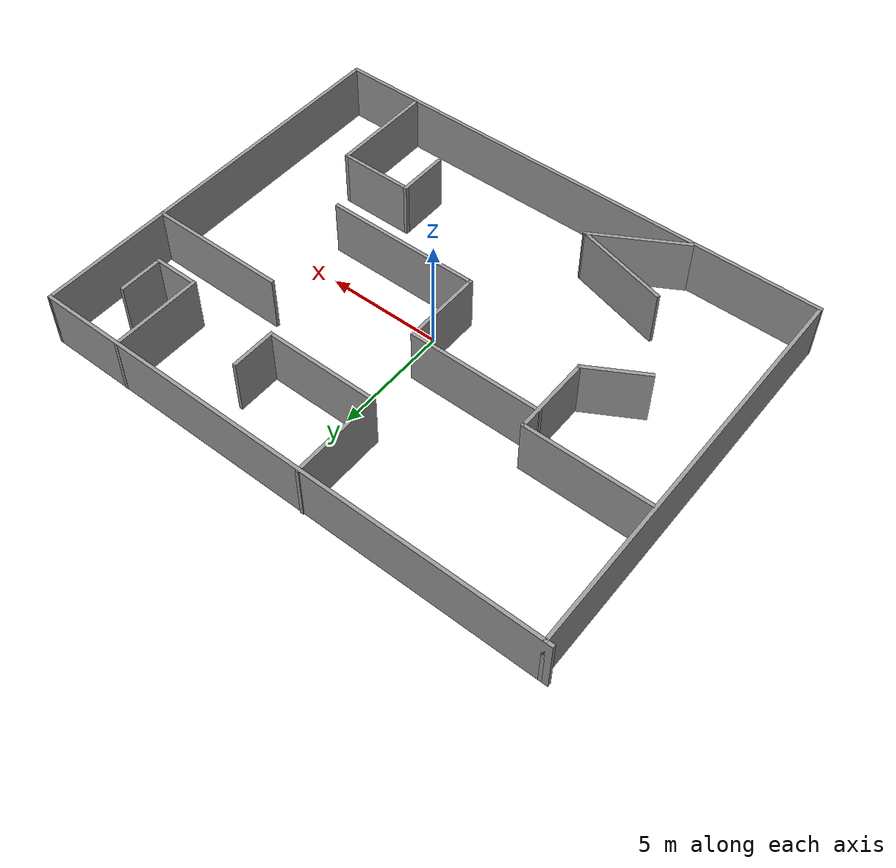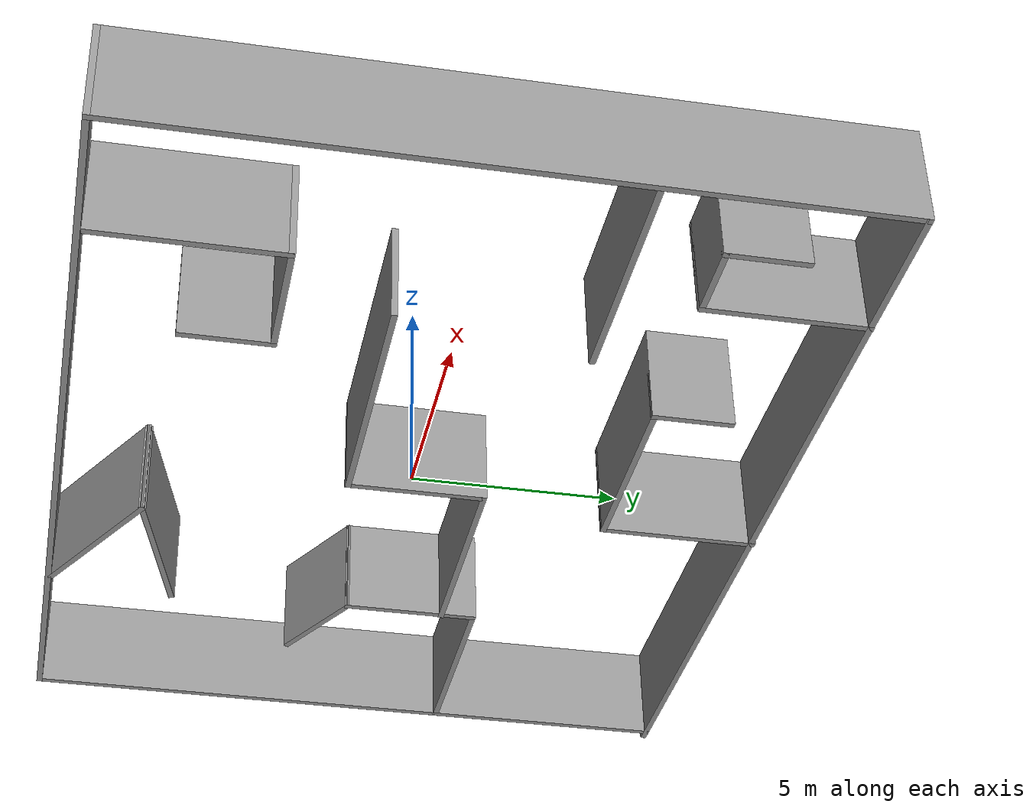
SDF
<?xml version='1.0'?>
<sdf version='1.7'>
  <model name='playground'>
    <pose>-0.331229 0.25121 0 0 -0 0</pose>
    <link name='Wall_10'>
      <collision name='Wall_10_Collision'>
        <geometry>
          <box>
            <size>23 0.15 2.5</size>
          </box>
        </geometry>
        <pose>0 0 1.25 0 -0 0</pose>
      </collision>
      <visual name='Wall_10_Visual'>
        <pose>0 0 1.25 0 -0 0</pose>
        <geometry>
          <box>
            <size>23 0.15 2.5</size>
          </box>
        </geometry>
        <material>
          <script>
            <uri>file://media/materials/scripts/gazebo.material</uri>
            <name>Gazebo/Grey</name>
          </script>
          <ambient>1 1 1 1</ambient>
        </material>
        <meta>
          <layer>0</layer>
        </meta>
      </visual>
      <pose>-1e-06 8.65231 0 0 -0 0</pose>
    </link>
    <link name='Wall_11'>
      <collision name='Wall_11_Collision'>
        <geometry>
          <box>
            <size>17.5 0.15 2.5</size>
          </box>
        </geometry>
        <pose>0 0 1.25 0 -0 0</pose>
      </collision>
      <visual name='Wall_11_Visual'>
        <pose>0 0 1.25 0 -0 0</pose>
        <geometry>
          <box>
            <size>17.5 0.15 2.5</size>
          </box>
        </geometry>
        <material>
          <script>
            <uri>file://media/materials/scripts/gazebo.material</uri>
            <name>Gazebo/Grey</name>
          </script>
          <ambient>1 1 1 1</ambient>
        </material>
        <meta>
          <layer>0</layer>
        </meta>
      </visual>
      <pose>11.425 -0.022689 0 0 -0 -1.5708</pose>
    </link>
    <link name='Wall_12'>
      <collision name='Wall_12_Collision'>
        <geometry>
          <box>
            <size>22.75 0.15 2.5</size>
          </box>
        </geometry>
        <pose>0 0 1.25 0 -0 0</pose>
      </collision>
      <visual name='Wall_12_Visual'>
        <pose>0 0 1.25 0 -0 0</pose>
        <geometry>
          <box>
            <size>22.75 0.15 2.5</size>
          </box>
        </geometry>
        <material>
          <script>
            <uri>file://media/materials/scripts/gazebo.material</uri>
            <name>Gazebo/Grey</name>
          </script>
          <ambient>1 1 1 1</ambient>
        </material>
        <meta>
          <layer>0</layer>
        </meta>
      </visual>
      <pose>0.124999 -8.69769 0 0 -0 3.14159</pose>
    </link>
    <link name='Wall_13'>
      <collision name='Wall_13_Collision'>
        <geometry>
          <box>
            <size>17.5 0.15 2.5</size>
          </box>
        </geometry>
        <pose>0 0 1.25 0 -0 0</pose>
      </collision>
      <visual name='Wall_13_Visual'>
        <pose>0 0 1.25 0 -0 0</pose>
        <geometry>
          <box>
            <size>17.5 0.15 2.5</size>
          </box>
        </geometry>
        <material>
          <script>
            <uri>file://media/materials/scripts/gazebo.material</uri>
            <name>Gazebo/Grey</name>
          </script>
          <ambient>1 1 1 1</ambient>
        </material>
        <meta>
          <layer>0</layer>
        </meta>
      </visual>
      <pose>-11.175 -0.022689 0 0 -0 1.5708</pose>
    </link>
    <link name='Wall_15'>
      <collision name='Wall_15_Collision'>
        <geometry>
          <box>
            <size>4 0.15 2.5</size>
          </box>
        </geometry>
        <pose>0 0 1.25 0 -0 0</pose>
      </collision>
      <visual name='Wall_15_Visual'>
        <pose>0 0 1.25 0 -0 0</pose>
        <geometry>
          <box>
            <size>4 0.15 2.5</size>
          </box>
        </geometry>
        <material>
          <script>
            <uri>file://media/materials/scripts/gazebo.material</uri>
            <name>Gazebo/Grey</name>
          </script>
          <ambient>1 1 1 1</ambient>
        </material>
        <meta>
          <layer>0</layer>
        </meta>
      </visual>
      <pose>7.79704 6.73751 0 0 -0 -1.5708</pose>
    </link>
    <link name='Wall_16'>
      <collision name='Wall_16_Collision'>
        <geometry>
          <box>
            <size>2 0.15 2.5</size>
          </box>
        </geometry>
        <pose>0 0 1.25 0 -0 0</pose>
      </collision>
      <visual name='Wall_16_Visual'>
        <pose>0 0 1.25 0 -0 0</pose>
        <geometry>
          <box>
            <size>2 0.15 2.5</size>
          </box>
        </geometry>
        <material>
          <script>
            <uri>file://media/materials/scripts/gazebo.material</uri>
            <name>Gazebo/Grey</name>
          </script>
          <ambient>1 1 1 1</ambient>
        </material>
        <meta>
          <layer>0</layer>
        </meta>
      </visual>
      <pose>8.72204 4.81251 0 0 -0 0</pose>
    </link>
    <link name='Wall_17'>
      <collision name='Wall_17_Collision'>
        <geometry>
          <box>
            <size>2 0.15 2.5</size>
          </box>
        </geometry>
        <pose>0 0 1.25 0 -0 0</pose>
      </collision>
      <visual name='Wall_17_Visual'>
        <pose>0 0 1.25 0 -0 0</pose>
        <geometry>
          <box>
            <size>2 0.15 2.5</size>
          </box>
        </geometry>
        <material>
          <script>
            <uri>file://media/materials/scripts/gazebo.material</uri>
            <name>Gazebo/Grey</name>
          </script>
          <ambient>1 1 1 1</ambient>
        </material>
        <meta>
          <layer>0</layer>
        </meta>
      </visual>
      <pose>9.64704 5.73751 0 0 -0 1.5708</pose>
    </link>
    <link name='Wall_19'>
      <collision name='Wall_19_Collision'>
        <geometry>
          <box>
            <size>6 0.15 2.5</size>
          </box>
        </geometry>
        <pose>0 0 1.25 0 -0 0</pose>
      </collision>
      <visual name='Wall_19_Visual'>
        <pose>0 0 1.25 0 -0 0</pose>
        <geometry>
          <box>
            <size>6 0.15 2.5</size>
          </box>
        </geometry>
        <material>
          <script>
            <uri>file://media/materials/scripts/gazebo.material</uri>
            <name>Gazebo/Grey</name>
          </script>
          <ambient>1 1 1 1</ambient>
        </material>
        <meta>
          <layer>0</layer>
        </meta>
      </visual>
      <pose>8.49545 2.92837 0 0 -0 3.14159</pose>
    </link>
    <link name='Wall_23'>
      <collision name='Wall_23_Collision'>
        <geometry>
          <box>
            <size>4.5 0.15 2.5</size>
          </box>
        </geometry>
        <pose>0 0 1.25 0 -0 0</pose>
      </collision>
      <visual name='Wall_23_Visual'>
        <pose>0 0 1.25 0 -0 0</pose>
        <geometry>
          <box>
            <size>4.5 0.15 2.5</size>
          </box>
        </geometry>
        <material>
          <script>
            <uri>file://media/materials/scripts/gazebo.material</uri>
            <name>Gazebo/Grey</name>
          </script>
          <ambient>1 1 1 1</ambient>
        </material>
        <meta>
          <layer>0</layer>
        </meta>
      </visual>
      <pose>8.00811 -6.3649 0 0 -0 1.5708</pose>
    </link>
    <link name='Wall_24'>
      <collision name='Wall_24_Collision'>
        <geometry>
          <box>
            <size>3.25 0.15 2.5</size>
          </box>
        </geometry>
        <pose>0 0 1.25 0 -0 0</pose>
      </collision>
      <visual name='Wall_24_Visual'>
        <pose>0 0 1.25 0 -0 0</pose>
        <geometry>
          <box>
            <size>3.25 0.15 2.5</size>
          </box>
        </geometry>
        <material>
          <script>
            <uri>file://media/materials/scripts/gazebo.material</uri>
            <name>Gazebo/Grey</name>
          </script>
          <ambient>1 1 1 1</ambient>
        </material>
        <meta>
          <layer>0</layer>
        </meta>
      </visual>
      <pose>6.45811 -4.18991 0 0 -0 3.14159</pose>
    </link>
    <link name='Wall_25'>
      <collision name='Wall_25_Collision'>
        <geometry>
          <box>
            <size>2.25 0.15 2.5</size>
          </box>
        </geometry>
        <pose>0 0 1.25 0 -0 0</pose>
      </collision>
      <visual name='Wall_25_Visual'>
        <pose>0 0 1.25 0 -0 0</pose>
        <geometry>
          <box>
            <size>2.25 0.15 2.5</size>
          </box>
        </geometry>
        <material>
          <script>
            <uri>file://media/materials/scripts/gazebo.material</uri>
            <name>Gazebo/Grey</name>
          </script>
          <ambient>1 1 1 1</ambient>
        </material>
        <meta>
          <layer>0</layer>
        </meta>
      </visual>
      <pose>4.90811 -5.2399 0 0 -0 -1.5708</pose>
    </link>
    <link name='Wall_27'>
      <collision name='Wall_27_Collision'>
        <geometry>
          <box>
            <size>4 0.15 2.5</size>
          </box>
        </geometry>
        <pose>0 0 1.25 0 -0 0</pose>
      </collision>
      <visual name='Wall_27_Visual'>
        <pose>0 0 1.25 0 -0 0</pose>
        <geometry>
          <box>
            <size>4 0.15 2.5</size>
          </box>
        </geometry>
        <material>
          <script>
            <uri>file://media/materials/scripts/gazebo.material</uri>
            <name>Gazebo/Grey</name>
          </script>
          <ambient>1 1 1 1</ambient>
        </material>
        <meta>
          <layer>0</layer>
        </meta>
      </visual>
      <pose>-1.06801 6.77269 0 0 -0 -1.5708</pose>
    </link>
    <link name='Wall_28'>
      <collision name='Wall_28_Collision'>
        <geometry>
          <box>
            <size>5 0.15 2.5</size>
          </box>
        </geometry>
        <pose>0 0 1.25 0 -0 0</pose>
      </collision>
      <visual name='Wall_28_Visual'>
        <pose>0 0 1.25 0 -0 0</pose>
        <geometry>
          <box>
            <size>5 0.15 2.5</size>
          </box>
        </geometry>
        <material>
          <script>
            <uri>file://media/materials/scripts/gazebo.material</uri>
            <name>Gazebo/Grey</name>
          </script>
          <ambient>1 1 1 1</ambient>
        </material>
        <meta>
          <layer>0</layer>
        </meta>
      </visual>
      <pose>1.35699 4.84769 0 0 -0 0</pose>
    </link>
    <link name='Wall_29'>
      <collision name='Wall_29_Collision'>
        <geometry>
          <box>
            <size>2 0.15 2.5</size>
          </box>
        </geometry>
        <pose>0 0 1.25 0 -0 0</pose>
      </collision>
      <visual name='Wall_29_Visual'>
        <pose>0 0 1.25 0 -0 0</pose>
        <geometry>
          <box>
            <size>2 0.15 2.5</size>
          </box>
        </geometry>
        <material>
          <script>
            <uri>file://media/materials/scripts/gazebo.material</uri>
            <name>Gazebo/Grey</name>
          </script>
          <ambient>1 1 1 1</ambient>
        </material>
        <meta>
          <layer>0</layer>
        </meta>
      </visual>
      <pose>3.78199 5.77269 0 0 -0 1.5708</pose>
    </link>
    <link name='Wall_31'>
      <collision name='Wall_31_Collision'>
        <geometry>
          <box>
            <size>5.5 0.15 2.5</size>
          </box>
        </geometry>
        <pose>0 0 1.25 0 -0 0</pose>
      </collision>
      <visual name='Wall_31_Visual'>
        <pose>0 0 1.25 0 -0 0</pose>
        <geometry>
          <box>
            <size>5.5 0.15 2.5</size>
          </box>
        </geometry>
        <material>
          <script>
            <uri>file://media/materials/scripts/gazebo.material</uri>
            <name>Gazebo/Grey</name>
          </script>
          <ambient>1 1 1 1</ambient>
        </material>
        <meta>
          <layer>0</layer>
        </meta>
      </visual>
      <pose>-8.48932 2.47105 0 0 -0 0</pose>
    </link>
    <link name='Wall_32'>
      <collision name='Wall_32_Collision'>
        <geometry>
          <box>
            <size>3.5 0.15 2.5</size>
          </box>
        </geometry>
        <pose>0 0 1.25 0 -0 0</pose>
      </collision>
      <visual name='Wall_32_Visual'>
        <pose>0 0 1.25 0 -0 0</pose>
        <geometry>
          <box>
            <size>3.5 0.15 2.5</size>
          </box>
        </geometry>
        <material>
          <script>
            <uri>file://media/materials/scripts/gazebo.material</uri>
            <name>Gazebo/Grey</name>
          </script>
          <ambient>1 1 1 1</ambient>
        </material>
        <meta>
          <layer>0</layer>
        </meta>
      </visual>
      <pose>-5.81431 0.796048 0 0 -0 -1.5708</pose>
    </link>
    <link name='Wall_33'>
      <collision name='Wall_33_Collision'>
        <geometry>
          <box>
            <size>2.75 0.15 2.5</size>
          </box>
        </geometry>
        <pose>0 0 1.25 0 -0 0</pose>
      </collision>
      <visual name='Wall_33_Visual'>
        <pose>0 0 1.25 0 -0 0</pose>
        <geometry>
          <box>
            <size>2.75 0.15 2.5</size>
          </box>
        </geometry>
        <material>
          <script>
            <uri>file://media/materials/scripts/gazebo.material</uri>
            <name>Gazebo/Grey</name>
          </script>
          <ambient>1 1 1 1</ambient>
        </material>
        <meta>
          <layer>0</layer>
        </meta>
      </visual>
      <pose>-6.94015 -1.52895 0 0 -0 -2.61799</pose>
    </link>
    <link name='Wall_35'>
      <collision name='Wall_35_Collision'>
        <geometry>
          <box>
            <size>4.25 0.15 2.5</size>
          </box>
        </geometry>
        <pose>0 0 1.25 0 -0 0</pose>
      </collision>
      <visual name='Wall_35_Visual'>
        <pose>0 0 1.25 0 -0 0</pose>
        <geometry>
          <box>
            <size>4.25 0.15 2.5</size>
          </box>
        </geometry>
        <material>
          <script>
            <uri>file://media/materials/scripts/gazebo.material</uri>
            <name>Gazebo/Grey</name>
          </script>
          <ambient>1 1 1 1</ambient>
        </material>
        <meta>
          <layer>0</layer>
        </meta>
      </visual>
      <pose>-3.93626 -7.58526 0 0 -0 0.523599</pose>
    </link>
    <link name='Wall_36'>
      <collision name='Wall_36_Collision'>
        <geometry>
          <box>
            <size>4.25 0.15 2.5</size>
          </box>
        </geometry>
        <pose>0 0 1.25 0 -0 0</pose>
      </collision>
      <visual name='Wall_36_Visual'>
        <pose>0 0 1.25 0 -0 0</pose>
        <geometry>
          <box>
            <size>4.25 0.15 2.5</size>
          </box>
        </geometry>
        <material>
          <script>
            <uri>file://media/materials/scripts/gazebo.material</uri>
            <name>Gazebo/Grey</name>
          </script>
          <ambient>1 1 1 1</ambient>
        </material>
        <meta>
          <layer>0</layer>
        </meta>
      </visual>
      <pose>-4.14105 -6.02968 0 0 -0 2.87979</pose>
    </link>
    <link name='Wall_39'>
      <collision name='Wall_39_Collision'>
        <geometry>
          <box>
            <size>5.75 0.15 2.5</size>
          </box>
        </geometry>
        <pose>0 0 1.25 0 -0 0</pose>
      </collision>
      <visual name='Wall_39_Visual'>
        <pose>0 0 1.25 0 -0 0</pose>
        <geometry>
          <box>
            <size>5.75 0.15 2.5</size>
          </box>
        </geometry>
        <material>
          <script>
            <uri>file://media/materials/scripts/gazebo.material</uri>
            <name>Gazebo/Grey</name>
          </script>
          <ambient>1 1 1 1</ambient>
        </material>
        <meta>
          <layer>0</layer>
        </meta>
      </visual>
      <pose>-3.05232 1.62676 0 0 -0 0</pose>
    </link>
    <link name='Wall_40'>
      <collision name='Wall_40_Collision'>
        <geometry>
          <box>
            <size>3.5 0.15 2.5</size>
          </box>
        </geometry>
        <pose>0 0 1.25 0 -0 0</pose>
      </collision>
      <visual name='Wall_40_Visual'>
        <pose>0 0 1.25 0 -0 0</pose>
        <geometry>
          <box>
            <size>3.5 0.15 2.5</size>
          </box>
        </geometry>
        <material>
          <script>
            <uri>file://media/materials/scripts/gazebo.material</uri>
            <name>Gazebo/Grey</name>
          </script>
          <ambient>1 1 1 1</ambient>
        </material>
        <meta>
          <layer>0</layer>
        </meta>
      </visual>
      <pose>-0.252322 -0.048242 0 0 -0 -1.5708</pose>
    </link>
    <link name='Wall_41'>
      <collision name='Wall_41_Collision'>
        <geometry>
          <box>
            <size>6.75 0.15 2.5</size>
          </box>
        </geometry>
        <pose>0 0 1.25 0 -0 0</pose>
      </collision>
      <visual name='Wall_41_Visual'>
        <pose>0 0 1.25 0 -0 0</pose>
        <geometry>
          <box>
            <size>6.75 0.15 2.5</size>
          </box>
        </geometry>
        <material>
          <script>
            <uri>file://media/materials/scripts/gazebo.material</uri>
            <name>Gazebo/Grey</name>
          </script>
          <ambient>1 1 1 1</ambient>
        </material>
        <meta>
          <layer>0</layer>
        </meta>
      </visual>
      <pose>3.04768 -1.72324 0 0 -0 0</pose>
    </link>
    <static>1</static>
  </model>
</sdf>
